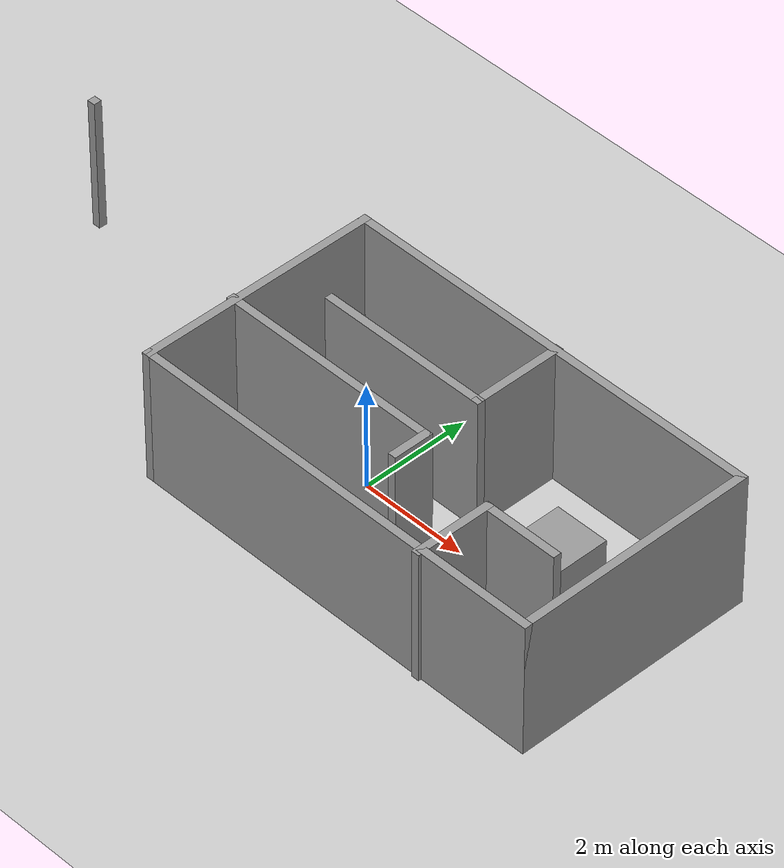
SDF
<sdf version="1.7">
 <world name="default">
  <light name="sun" type="directional">
   <pose>0 0 10 0 -0 0</pose>
   <diffuse>0.8 0.8 0.8 1</diffuse>
   <specular>0.2 0.2 0.2 1</specular>
   <attenuation>
    <range>1000</range>
    <constant>0.9</constant>
    <linear>0.01</linear>
    <quadratic>0.001</quadratic>
   </attenuation>
   <direction>-0.5 0.1 -0.9</direction>
   <spot><inner_angle>0</inner_angle><outer_angle>0</outer_angle><falloff>0</falloff></spot>
  </light>
  <model name="ground_plane">
   <static>1</static>
   <link name="link">
    <collision name="collision">
     <geometry><plane><normal>0 0 1</normal><size>100 100</size></plane></geometry>
     <surface><friction><ode><mu>100</mu><mu2>50</mu2></ode></friction></surface>
    </collision>
    <visual name="visual">
     <cast_shadows>0</cast_shadows>
     <geometry><plane><normal>0 0 1</normal><size>100 100</size></plane></geometry>
     <material>
      <script><uri>file://media/materials/scripts/gazebo.material</uri><name>Gazebo/Grey</name></script>
     </material>
    </visual>
   </link>
  </model>
  <gravity>0 0 -9.8</gravity>
  <magnetic_field>6e-06 2.3e-05 -4.2e-05</magnetic_field>
  <atmosphere type="adiabatic"/>
  <physics type="ode">
   <max_step_size>0.001</max_step_size>
   <real_time_factor>1</real_time_factor>
   <real_time_update_rate>1000</real_time_update_rate>
  </physics>
  <scene><ambient>0.4 0.4 0.4 1</ambient><background>0.7 0.7 0.7 1</background><shadows>1</shadows></scene>
  <audio><device>default</device></audio>
  <spherical_coordinates>
   <surface_model>EARTH_WGS84</surface_model>
   <latitude_deg>0</latitude_deg>
   <longitude_deg>0</longitude_deg>
   <elevation>0</elevation>
   <heading_deg>0</heading_deg>
  </spherical_coordinates>
  <model name="room">
   <pose>-0.856043 -0.007909 0 0 -0 0</pose>
   <link name="Wall_1">
    <collision name="Wall_1_Collision">
     <geometry><box><size>0.15 0.15 2.5</size></box></geometry>
     <pose>0 0 1.25 0 -0 0</pose>
    </collision>
    <visual name="Wall_1_Visual">
     <pose>0 0 1.25 0 -0 0</pose>
     <geometry><box><size>0.15 0.15 2.5</size></box></geometry>
     <material>
      <script><uri>file://media/materials/scripts/gazebo.material</uri><name>Gazebo/Grey</name></script>
      <ambient>1 1 1 1</ambient>
     </material>
     <meta><layer>0</layer></meta>
    </visual>
    <pose>-6.36759 1.11006 0 0 -0 0</pose>
   </link>
   <link name="Wall_10">
    <collision name="Wall_10_Collision">
     <geometry><box><size>4.5 0.15 2.5</size></box></geometry>
     <pose>0 0 1.25 0 -0 0</pose>
    </collision>
    <visual name="Wall_10_Visual">
     <pose>0 0 1.25 0 -0 0</pose>
     <geometry><box><size>4.5 0.15 2.5</size></box></geometry>
     <material>
      <script><uri>file://media/materials/scripts/gazebo.material</uri><name>Gazebo/Grey</name></script>
      <ambient>1 1 1 1</ambient>
     </material>
     <meta><layer>0</layer></meta>
    </visual>
    <pose>6.36759 0.020676 0 0 -0 -1.5708</pose>
   </link>
   <link name="Wall_11">
    <collision name="Wall_11_Collision">
     <geometry><box><size>8 0.15 2.5</size></box></geometry>
     <pose>0 0 1.25 0 -0 0</pose>
    </collision>
    <visual name="Wall_11_Visual">
     <pose>0 0 1.25 0 -0 0</pose>
     <geometry><box><size>8 0.15 2.5</size></box></geometry>
     <material>
      <script><uri>file://media/materials/scripts/gazebo.material</uri><name>Gazebo/Grey</name></script>
      <ambient>1 1 1 1</ambient>
     </material>
     <meta><layer>0</layer></meta>
    </visual>
    <pose>2.44258 -2.15432 0 0 -0 3.14159</pose>
   </link>
   <link name="Wall_12">
    <collision name="Wall_12_Collision">
     <geometry><box><size>4.5 0.15 2.5</size></box></geometry>
     <pose>0 0 1.25 0 -0 0</pose>
    </collision>
    <visual name="Wall_12_Visual">
     <pose>0 0 1.25 0 -0 0</pose>
     <geometry><box><size>4.5 0.15 2.5</size></box></geometry>
     <material>
      <script><uri>file://media/materials/scripts/gazebo.material</uri><name>Gazebo/Grey</name></script>
      <ambient>1 1 1 1</ambient>
     </material>
     <meta><layer>0</layer></meta>
    </visual>
    <pose>-1.48242 0.020676 0 0 -0 1.5708</pose>
   </link>
   <link name="Wall_14">
    <collision name="Wall_14_Collision">
     <geometry><box><size>1.75 0.15 2.5</size></box></geometry>
     <pose>0 0 1.25 0 -0 0</pose>
    </collision>
    <visual name="Wall_14_Visual">
     <pose>0 0 1.25 0 -0 0</pose>
     <geometry><box><size>1.75 0.15 2.5</size></box></geometry>
     <material>
      <script><uri>file://media/materials/scripts/gazebo.material</uri><name>Gazebo/Grey</name></script>
      <ambient>1 1 1 1</ambient>
     </material>
     <meta><layer>0</layer></meta>
    </visual>
    <pose>2.58588 1.4073 0 0 -0 -1.5708</pose>
   </link>
   <link name="Wall_15">
    <collision name="Wall_15_Collision">
     <geometry><box><size>3.25 0.15 2.5</size></box></geometry>
     <pose>0 0 1.25 0 -0 0</pose>
    </collision>
    <visual name="Wall_15_Visual">
     <pose>0 0 1.25 0 -0 0</pose>
     <geometry><box><size>3.25 0.15 2.5</size></box></geometry>
     <material>
      <script><uri>file://media/materials/scripts/gazebo.material</uri><name>Gazebo/Grey</name></script>
      <ambient>1 1 1 1</ambient>
     </material>
     <meta><layer>0</layer></meta>
    </visual>
    <pose>1.03588 0.607299 0 0 -0 3.14159</pose>
   </link>
   <link name="Wall_17">
    <collision name="Wall_17_Collision">
     <geometry><box><size>4.25 0.15 2.5</size></box></geometry>
     <pose>0 0 1.25 0 -0 0</pose>
    </collision>
    <visual name="Wall_17_Visual">
     <pose>0 0 1.25 0 -0 0</pose>
     <geometry><box><size>4.25 0.15 2.5</size></box></geometry>
     <material>
      <script><uri>file://media/materials/scripts/gazebo.material</uri><name>Gazebo/Grey</name></script>
      <ambient>1 1 1 1</ambient>
     </material>
     <meta><layer>0</layer></meta>
    </visual>
    <pose>0.530689 -0.445636 0 0 -0 0</pose>
   </link>
   <link name="Wall_18">
    <collision name="Wall_18_Collision">
     <geometry><box><size>0.75 0.15 2.5</size></box></geometry>
     <pose>0 0 1.25 0 -0 0</pose>
    </collision>
    <visual name="Wall_18_Visual">
     <pose>0 0 1.25 0 -0 0</pose>
     <geometry><box><size>0.75 0.15 2.5</size></box></geometry>
     <material>
      <script><uri>file://media/materials/scripts/gazebo.material</uri><name>Gazebo/Grey</name></script>
      <ambient>1 1 1 1</ambient>
     </material>
     <meta><layer>0</layer></meta>
    </visual>
    <pose>2.58069 -0.745636 0 0 -0 -1.5708</pose>
   </link>
   <link name="Wall_20">
    <collision name="Wall_20_Collision">
     <geometry><box><size>1.5 0.15 2.5</size></box></geometry>
     <pose>0 0 1.25 0 -0 0</pose>
    </collision>
    <visual name="Wall_20_Visual">
     <pose>0 0 1.25 0 -0 0</pose>
     <geometry><box><size>1.5 0.15 2.5</size></box></geometry>
     <material>
      <script><uri>file://media/materials/scripts/gazebo.material</uri><name>Gazebo/Grey</name></script>
      <ambient>1 1 1 1</ambient>
     </material>
     <meta><layer>0</layer></meta>
    </visual>
    <pose>4.27827 -1.5323 0 0 -0 -1.5708</pose>
   </link>
   <link name="Wall_22">
    <collision name="Wall_22_Collision">
     <geometry><box><size>1.5 0.15 2.5</size></box></geometry>
     <pose>0 0 1.25 0 -0 0</pose>
    </collision>
    <visual name="Wall_22_Visual">
     <pose>0 0 1.25 0 -0 0</pose>
     <geometry><box><size>1.5 0.15 2.5</size></box></geometry>
     <material>
      <script><uri>file://media/materials/scripts/gazebo.material</uri><name>Gazebo/Grey</name></script>
      <ambient>1 1 1 1</ambient>
     </material>
     <meta><layer>0</layer></meta>
    </visual>
    <pose>4.95327 -0.857299 0 0 -0 0</pose>
   </link>
   <link name="Wall_9">
    <collision name="Wall_9_Collision">
     <geometry><box><size>8 0.15 2.5</size></box></geometry>
     <pose>0 0 1.25 0 -0 0</pose>
    </collision>
    <visual name="Wall_9_Visual">
     <pose>0 0 1.25 0 -0 0</pose>
     <geometry><box><size>8 0.15 2.5</size></box></geometry>
     <material>
      <script><uri>file://media/materials/scripts/gazebo.material</uri><name>Gazebo/Grey</name></script>
      <ambient>1 1 1 1</ambient>
     </material>
     <meta><layer>0</layer></meta>
    </visual>
    <pose>2.44258 2.19568 0 0 -0 0</pose>
   </link>
   <static>1</static>
  </model>
  <model name="unit_box_0">
   <pose>3.53104 0.48694 0.5 0 -0 0</pose>
   <link name="link">
    <inertial>
     <mass>1</mass>
     <inertia>
      <ixx>0.166667</ixx>
      <ixy>0</ixy>
      <ixz>0</ixz>
      <iyy>0.166667</iyy>
      <iyz>0</iyz>
      <izz>0.166667</izz>
     </inertia>
    </inertial>
    <collision name="collision"><geometry><box><size>1 1 1</size></box></geometry></collision>
    <visual name="visual">
     <geometry><box><size>1 1 1</size></box></geometry>
     <material>
      <script><name>Gazebo/Grey</name><uri>file://media/materials/scripts/gazebo.material</uri></script>
     </material>
    </visual>
   </link>
  </model>
 </world>
</sdf>
